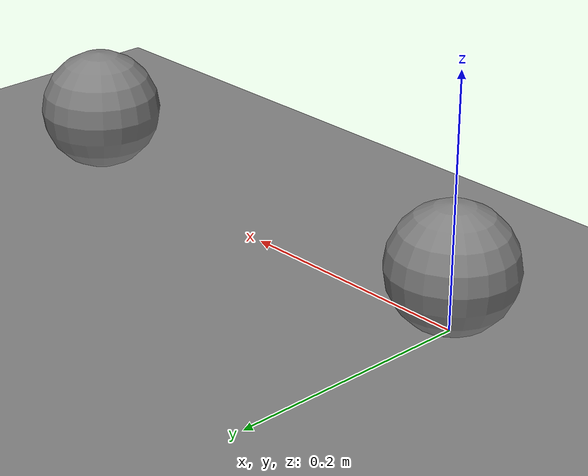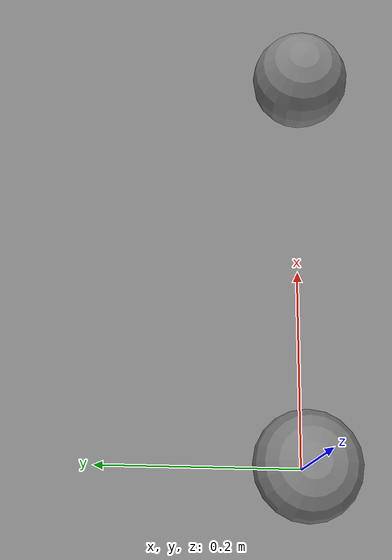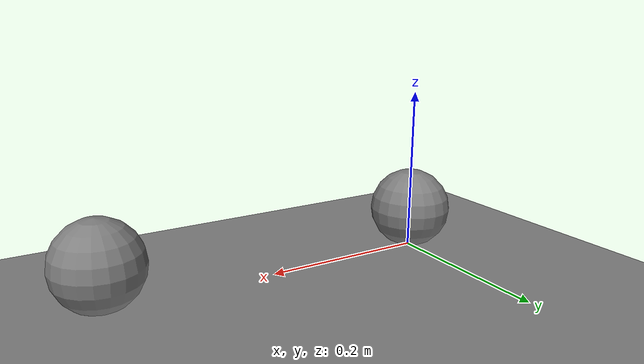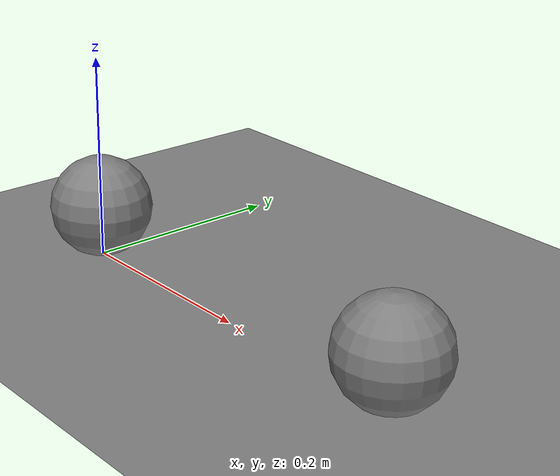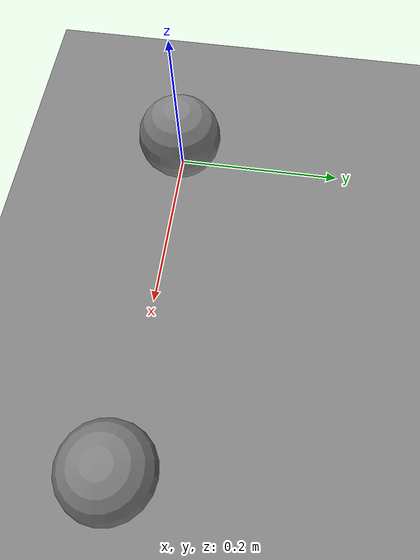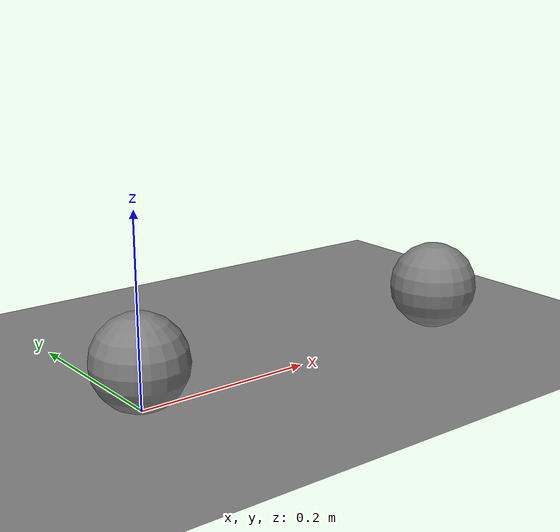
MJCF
<mujoco model="contact_reading">
  <compiler angle="radian"/>
  <option timestep="0.001" integrator="Euler" solver="Newton" cone="elliptic"
          iterations="20" tolerance="1e-8" noslip_iterations="0"/>
  <worldbody>
    <geom name="ground" type="plane" size="1 1 0.1"
          contype="1" conaffinity="0" margin="0.001" gap="0.003"
          condim="6" friction="0.6 0.01 0.001"/>
    <body name="near_sphere" pos="0 0 0.051">
      <freejoint/>
      <geom name="near_surface" type="sphere" size="0.05" mass="1"
            contype="0" conaffinity="1" margin="0.001"
            condim="3" friction="0.3 0.02 0.002"/>
    </body>
    <body name="gap_sphere" pos="0.4 0 0.054">
      <freejoint/>
      <geom name="gap_surface" type="sphere" size="0.05" mass="1"
            contype="0" conaffinity="1" margin="0.001"
            condim="3" friction="0.3 0.02 0.002"/>
    </body>
  </worldbody>
</mujoco>
